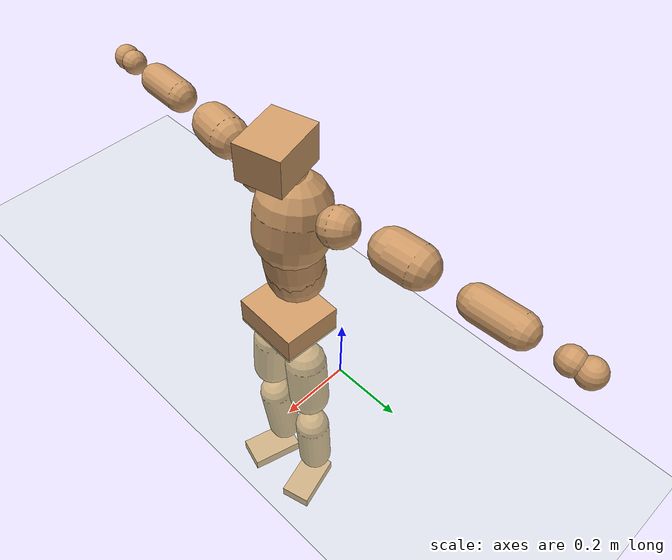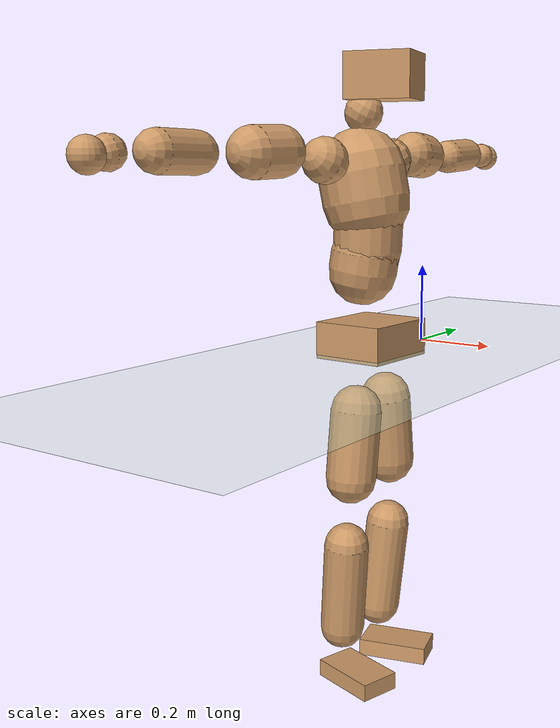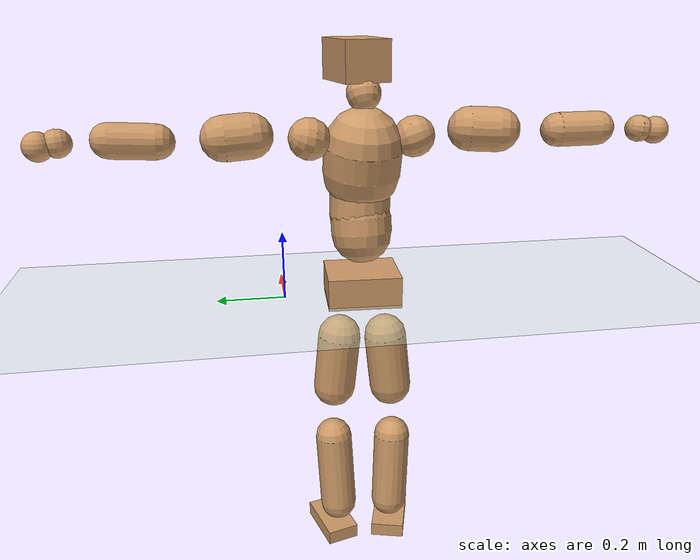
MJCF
<mujoco model="humanoid">
  <compiler coordinate="local" angle="radian"/>
  <default>
    <joint damping="0.0" armature="0.01" stiffness="0.0" limited="true"/>
    <geom conaffinity="1" condim="3" contype="7" margin="0.001" rgba="0.8 0.6 .4 1"/>
  </default>
  <asset>
    <texture type="skybox" builtin="gradient" rgb1=".4 .5 .6" rgb2="0 0 0" width="100" height="100"/>
    <texture builtin="flat" height="1278" mark="cross" markrgb="1 1 1" name="texgeom" random="0.01" rgb1="0.8 0.6 0.4" rgb2="0.8 0.6 0.4" type="cube" width="127"/>
    <texture builtin="checker" height="100" name="texplane" rgb1="0 0 0" rgb2="0.8 0.8 0.8" type="2d" width="100"/>
    <material name="MatPlane" reflectance="0.5" shininess="1" specular="1" texrepeat="60 60" texture="texplane"/>
    <material name="geom" texture="texgeom" texuniform="true"/>
  </asset>
  <worldbody>
    <light cutoff="100" diffuse="1 1 1" dir="-0 0 -1.3" directional="true" exponent="1" pos="0 0 1.3" specular=".1 .1 .1"/>
    <geom conaffinity="1" condim="3" name="floor" pos="0 0 0" rgba="0.8 0.9 0.8 1" size="100 100 .2" type="plane" material="MatPlane"/>
    <body name="Pelvis" pos="-0.0036 -0.2286 0.0427">
      <freejoint name="Pelvis"/>
      <geom type="box" contype="1" conaffinity="1" density="5359.374392" pos="-0.0109 0.0004 -0.0076" size="0.0925 0.1064 0.046" quat="0.9998 0.0000 0.0000 -0.0190" name="Pelvis"/>
      <body name="L_Hip" pos="-0.0118 0.0605 -0.0788">
        <joint name="L_Hip_x" type="hinge" pos="0 0 0" axis="1 0 0" stiffness="1600" damping="160" armature="0.02" range="-180.0000 180.0000"/>
        <joint name="L_Hip_y" type="hinge" pos="0 0 0" axis="0 1 0" stiffness="1600" damping="160" armature="0.02" range="-180.0000 180.0000"/>
        <joint name="L_Hip_z" type="hinge" pos="0 0 0" axis="0 0 1" stiffness="1600" damping="160" armature="0.02" range="-180.0000 180.0000"/>
        <geom type="capsule" contype="1" conaffinity="1" density="2040.816327" size="0.0643" fromto="0.0014 0.0097 -0.0938 0.0041 0.0275 -0.2657" name="L_Hip"/>
        <body name="L_Knee" pos="0.0055 0.0372 -0.3595">
          <joint name="L_Knee_x" type="hinge" pos="0 0 0" axis="1 0 0" stiffness="1600" damping="160" armature="0.02" range="-180.0000 180.0000"/>
          <joint name="L_Knee_y" type="hinge" pos="0 0 0" axis="0 1 0" stiffness="1600" damping="160" armature="0.02" range="-180.0000 180.0000"/>
          <joint name="L_Knee_z" type="hinge" pos="0 0 0" axis="0 0 1" stiffness="1600" damping="160" armature="0.02" range="-180.0000 180.0000"/>
          <geom type="capsule" contype="1" conaffinity="1" density="1234.567901" size="0.0568" fromto="-0.0080 -0.0034 -0.0863 -0.0304 -0.0129 -0.3264" name="L_Knee"/>
          <body name="L_Ankle" pos="-0.0384 -0.0164 -0.4127">
            <joint name="L_Ankle_x" type="hinge" pos="0 0 0" axis="1 0 0" stiffness="1600" damping="160" armature="0.02" range="-180.0000 180.0000"/>
            <joint name="L_Ankle_y" type="hinge" pos="0 0 0" axis="0 1 0" stiffness="1600" damping="160" armature="0.02" range="-180.0000 180.0000"/>
            <joint name="L_Ankle_z" type="hinge" pos="0 0 0" axis="0 0 1" stiffness="1600" damping="160" armature="0.02" range="-180.0000 180.0000"/>
            <geom type="box" contype="1" conaffinity="1" density="999.999995" pos="0.0608 0.0169 -0.0288" size="0.091 0.0505 0.0222" quat="0.9909 0.0000 0.0000 0.1348" name="L_Ankle"/>
            <body name="L_Toe" pos="0.1216 0.0337 -0.0577">
              <joint name="L_Toe_x" type="hinge" pos="0 0 0" axis="1 0 0" stiffness="1000" damping="100" armature="0.02" range="-180.0000 180.0000"/>
              <joint name="L_Toe_y" type="hinge" pos="0 0 0" axis="0 1 0" stiffness="1000" damping="100" armature="0.02" range="-180.0000 180.0000"/>
              <joint name="L_Toe_z" type="hinge" pos="0 0 0" axis="0 0 1" stiffness="1000" damping="100" armature="0.02" range="-180.0000 180.0000"/>
              <geom type="box" contype="1" conaffinity="1" density="8695655.208086" pos="0.0000 0.0000 0.0272" size="0.0011 0.0025 0.001" quat="0.9901 0.0000 0.0000 0.1402" name="L_Toe"/>
            </body>
          </body>
        </body>
      </body>
      <body name="R_Hip" pos="-0.0059 -0.0628 -0.0873">
        <joint name="R_Hip_x" type="hinge" pos="0 0 0" axis="1 0 0" stiffness="1600" damping="160" armature="0.02" range="-180.0000 180.0000"/>
        <joint name="R_Hip_y" type="hinge" pos="0 0 0" axis="0 1 0" stiffness="1600" damping="160" armature="0.02" range="-180.0000 180.0000"/>
        <joint name="R_Hip_z" type="hinge" pos="0 0 0" axis="0 0 1" stiffness="1600" damping="160" armature="0.02" range="-180.0000 180.0000"/>
        <geom type="capsule" contype="1" conaffinity="1" density="2040.816327" size="0.0638" fromto="-0.0019 -0.0094 -0.0933 -0.0055 -0.0268 -0.2669" name="R_Hip"/>
        <body name="R_Knee" pos="-0.0074 -0.0362 -0.3603">
          <joint name="R_Knee_x" type="hinge" pos="0 0 0" axis="1 0 0" stiffness="1600" damping="160" armature="0.02" range="-180.0000 180.0000"/>
          <joint name="R_Knee_y" type="hinge" pos="0 0 0" axis="0 1 0" stiffness="1600" damping="160" armature="0.02" range="-180.0000 180.0000"/>
          <joint name="R_Knee_z" type="hinge" pos="0 0 0" axis="0 0 1" stiffness="1600" damping="160" armature="0.02" range="-180.0000 180.0000"/>
          <geom type="capsule" contype="1" conaffinity="1" density="1234.567901" size="0.0568" fromto="-0.0075 0.0040 -0.0864 -0.0277 0.0149 -0.3191" name="R_Knee"/>
          <body name="R_Ankle" pos="-0.0352 0.0189 -0.4054">
            <joint name="R_Ankle_x" type="hinge" pos="0 0 0" axis="1 0 0" stiffness="1600" damping="160" armature="0.02" range="-180.0000 180.0000"/>
            <joint name="R_Ankle_y" type="hinge" pos="0 0 0" axis="0 1 0" stiffness="1600" damping="160" armature="0.02" range="-180.0000 180.0000"/>
            <joint name="R_Ankle_z" type="hinge" pos="0 0 0" axis="0 0 1" stiffness="1600" damping="160" armature="0.02" range="-180.0000 180.0000"/>
            <geom type="box" contype="1" conaffinity="1" density="999.999982" pos="0.0641 -0.0180 -0.0297" size="0.0896 0.0526 0.022" quat="0.9906 0.0000 0.0000 -0.1365" name="R_Ankle"/>
            <body name="R_Toe" pos="0.1283 -0.036 -0.0594">
              <joint name="R_Toe_x" type="hinge" pos="0 0 0" axis="1 0 0" stiffness="1000" damping="100" armature="0.02" range="-180.0000 180.0000"/>
              <joint name="R_Toe_y" type="hinge" pos="0 0 0" axis="0 1 0" stiffness="1000" damping="100" armature="0.02" range="-180.0000 180.0000"/>
              <joint name="R_Toe_z" type="hinge" pos="0 0 0" axis="0 0 1" stiffness="1000" damping="100" armature="0.02" range="-180.0000 180.0000"/>
              <geom type="box" contype="1" conaffinity="1" density="8256072.211598" pos="0.0000 0.0000 0.0291" size="0.0012 0.0026 0.0011" quat="0.9919 0.0000 0.0000 -0.1274" name="R_Toe"/>
            </body>
          </body>
        </body>
      </body>
      <body name="Torso" pos="-0.0477 0.0047 0.1203">
        <joint name="Torso_x" type="hinge" pos="0 0 0" axis="1 0 0" stiffness="2000" damping="200" armature="0.02" range="-180.0000 180.0000"/>
        <joint name="Torso_y" type="hinge" pos="0 0 0" axis="0 1 0" stiffness="2000" damping="200" armature="0.02" range="-180.0000 180.0000"/>
        <joint name="Torso_z" type="hinge" pos="0 0 0" axis="0 0 1" stiffness="2000" damping="200" armature="0.02" range="-180.0000 180.0000"/>
        <geom type="capsule" contype="1" conaffinity="1" density="2040.816327" size="0.0863" fromto="0.0132 0.0027 0.0853 0.0062 0.0013 0.0398" name="Torso"/>
        <body name="Spine" pos="0.0194 0.004 0.125">
          <joint name="Spine_x" type="hinge" pos="0 0 0" axis="1 0 0" stiffness="2000" damping="200" armature="0.02" range="-180.0000 180.0000"/>
          <joint name="Spine_y" type="hinge" pos="0 0 0" axis="0 1 0" stiffness="2000" damping="200" armature="0.02" range="-180.0000 180.0000"/>
          <joint name="Spine_z" type="hinge" pos="0 0 0" axis="0 0 1" stiffness="2000" damping="200" armature="0.02" range="-180.0000 180.0000"/>
          <geom type="capsule" contype="1" conaffinity="1" density="2040.816327" size="0.0859" fromto="0.0064 -0.0032 0.0856 -0.0026 0.0013 -0.0346" name="Spine"/>
          <body name="Chest" pos="0.0038 -0.0019 0.0509">
            <joint name="Chest_x" type="hinge" pos="0 0 0" axis="1 0 0" stiffness="2000" damping="200" armature="0.02" range="-180.0000 180.0000"/>
            <joint name="Chest_y" type="hinge" pos="0 0 0" axis="0 1 0" stiffness="2000" damping="200" armature="0.02" range="-180.0000 180.0000"/>
            <joint name="Chest_z" type="hinge" pos="0 0 0" axis="0 0 1" stiffness="2000" damping="200" armature="0.02" range="-180.0000 180.0000"/>
            <geom type="capsule" contype="1" conaffinity="1" density="2040.816327" size="0.1086" fromto="-0.0192 -0.0060 0.1067 -0.0066 -0.0021 0.0367" name="Chest"/>
            <body name="Neck" pos="-0.0356 -0.0141 0.2065">
              <joint name="Neck_x" type="hinge" pos="0 0 0" axis="1 0 0" stiffness="1000" damping="100" armature="0.02" range="-180.0000 180.0000"/>
              <joint name="Neck_y" type="hinge" pos="0 0 0" axis="0 1 0" stiffness="1000" damping="100" armature="0.02" range="-180.0000 180.0000"/>
              <joint name="Neck_z" type="hinge" pos="0 0 0" axis="0 0 1" stiffness="1000" damping="100" armature="0.02" range="-180.0000 180.0000"/>
              <geom type="capsule" contype="1" conaffinity="1" density="1000" size="0.0472" fromto="0.0238 0.0054 0.0398 0.0248 0.0056 0.0416" name="Neck"/>
              <body name="Head" pos="0.0486 0.011 0.0814">
                <joint name="Head_x" type="hinge" pos="0 0 0" axis="1 0 0" stiffness="1000" damping="100" armature="0.02" range="-180.0000 180.0000"/>
                <joint name="Head_y" type="hinge" pos="0 0 0" axis="0 1 0" stiffness="1000" damping="100" armature="0.02" range="-180.0000 180.0000"/>
                <joint name="Head_z" type="hinge" pos="0 0 0" axis="0 0 1" stiffness="1000" damping="100" armature="0.02" range="-180.0000 180.0000"/>
                <geom type="box" contype="1" conaffinity="1" density="2250.000051" pos="0.0253 0.0065 0.0417" size="0.0825 0.0655 0.0546" quat="0.9921 0.0000 0.0000 0.1253" name="Head"/>
              </body>
            </body>
            <body name="L_Thorax" pos="-0.018 0.0754 0.1127">
              <joint name="L_Thorax_x" type="hinge" pos="0 0 0" axis="1 0 0" stiffness="1000" damping="100" armature="0.02" range="-180.0000 180.0000"/>
              <joint name="L_Thorax_y" type="hinge" pos="0 0 0" axis="0 1 0" stiffness="1000" damping="100" armature="0.02" range="-180.0000 180.0000"/>
              <joint name="L_Thorax_z" type="hinge" pos="0 0 0" axis="0 0 1" stiffness="1000" damping="100" armature="0.02" range="-180.0000 180.0000"/>
              <geom type="capsule" contype="1" conaffinity="1" density="1000" size="0.0565" fromto="-0.0122 0.0652 0.0213 -0.0126 0.0671 0.0219" name="L_Thorax"/>
              <body name="L_Shoulder" pos="-0.0248 0.1323 0.0432">
                <joint name="L_Shoulder_x" type="hinge" pos="0 0 0" axis="1 0 0" stiffness="1000" damping="100" armature="0.02" range="-720.0000 720.0000"/>
                <joint name="L_Shoulder_y" type="hinge" pos="0 0 0" axis="0 1 0" stiffness="1000" damping="100" armature="0.02" range="-720.0000 720.0000"/>
                <joint name="L_Shoulder_z" type="hinge" pos="0 0 0" axis="0 0 1" stiffness="1000" damping="100" armature="0.02" range="-720.0000 720.0000"/>
                <geom type="capsule" contype="1" conaffinity="1" density="1000" size="0.0598" fromto="-0.0103 0.0891 -0.0051 -0.0185 0.1596 -0.0091" name="L_Shoulder"/>
                <body name="L_Elbow" pos="-0.0288 0.2487 -0.0141">
                  <joint name="L_Elbow_x" type="hinge" pos="0 0 0" axis="1 0 0" stiffness="1000" damping="100" armature="0.02" range="-720.0000 720.0000"/>
                  <joint name="L_Elbow_y" type="hinge" pos="0 0 0" axis="0 1 0" stiffness="1000" damping="100" armature="0.02" range="-720.0000 720.0000"/>
                  <joint name="L_Elbow_z" type="hinge" pos="0 0 0" axis="0 0 1" stiffness="1000" damping="100" armature="0.02" range="-720.0000 720.0000"/>
                  <geom type="capsule" contype="1" conaffinity="1" density="1000" size="0.046" fromto="-0.0013 0.0759 0.0041 -0.0033 0.1925 0.0104" name="L_Elbow"/>
                  <body name="L_Wrist" pos="-0.0046 0.2685 0.0145">
                    <joint name="L_Wrist_x" type="hinge" pos="0 0 0" axis="1 0 0" stiffness="600" damping="60" armature="0.02" range="-180.0000 180.0000"/>
                    <joint name="L_Wrist_y" type="hinge" pos="0 0 0" axis="0 1 0" stiffness="600" damping="60" armature="0.02" range="-180.0000 180.0000"/>
                    <joint name="L_Wrist_z" type="hinge" pos="0 0 0" axis="0 0 1" stiffness="600" damping="60" armature="0.02" range="-180.0000 180.0000"/>
                    <geom type="capsule" contype="1" conaffinity="1" density="1000" size="0.0357" fromto="-0.0079 0.0442 -0.0055 -0.0082 0.0461 -0.0057" name="L_Wrist"/>
                    <body name="L_Hand" pos="-0.0161 0.0903 -0.0112">
                      <joint name="L_Hand_x" type="hinge" pos="0 0 0" axis="1 0 0" stiffness="600" damping="60" armature="0.02" range="-180.0000 180.0000"/>
                      <joint name="L_Hand_y" type="hinge" pos="0 0 0" axis="0 1 0" stiffness="600" damping="60" armature="0.02" range="-180.0000 180.0000"/>
                      <joint name="L_Hand_z" type="hinge" pos="0 0 0" axis="0 0 1" stiffness="600" damping="60" armature="0.02" range="-180.0000 180.0000"/>
                      <geom type="sphere" contype="1" conaffinity="1" density="1000" size="0.0371" pos="0.0000 0.0000 0.0000" name="L_Hand"/>
                    </body>
                  </body>
                </body>
              </body>
            </body>
            <body name="R_Thorax" pos="-0.0237 -0.0856 0.111">
              <joint name="R_Thorax_x" type="hinge" pos="0 0 0" axis="1 0 0" stiffness="1000" damping="100" armature="0.02" range="-180.0000 180.0000"/>
              <joint name="R_Thorax_y" type="hinge" pos="0 0 0" axis="0 1 0" stiffness="1000" damping="100" armature="0.02" range="-180.0000 180.0000"/>
              <joint name="R_Thorax_z" type="hinge" pos="0 0 0" axis="0 0 1" stiffness="1000" damping="100" armature="0.02" range="-180.0000 180.0000"/>
              <geom type="capsule" contype="1" conaffinity="1" density="1000" size="0.0559" fromto="-0.0064 -0.0586 0.0222 -0.0066 -0.0605 0.0229" name="R_Thorax"/>
              <body name="R_Shoulder" pos="-0.0129 -0.1191 0.0452">
                <joint name="R_Shoulder_x" type="hinge" pos="0 0 0" axis="1 0 0" stiffness="1000" damping="100" armature="0.02" range="-720.0000 720.0000"/>
                <joint name="R_Shoulder_y" type="hinge" pos="0 0 0" axis="0 1 0" stiffness="1000" damping="100" armature="0.02" range="-720.0000 720.0000"/>
                <joint name="R_Shoulder_z" type="hinge" pos="0 0 0" axis="0 0 1" stiffness="1000" damping="100" armature="0.02" range="-720.0000 720.0000"/>
                <geom type="capsule" contype="1" conaffinity="1" density="1000" size="0.0598" fromto="-0.0133 -0.0888 -0.0031 -0.0251 -0.1669 -0.0059" name="R_Shoulder"/>
                <body name="R_Elbow" pos="-0.0384 -0.2557 -0.009">
                  <joint name="R_Elbow_x" type="hinge" pos="0 0 0" axis="1 0 0" stiffness="1000" damping="100" armature="0.02" range="-720.0000 720.0000"/>
                  <joint name="R_Elbow_y" type="hinge" pos="0 0 0" axis="0 1 0" stiffness="1000" damping="100" armature="0.02" range="-720.0000 720.0000"/>
                  <joint name="R_Elbow_z" type="hinge" pos="0 0 0" axis="0 0 1" stiffness="1000" damping="100" armature="0.02" range="-720.0000 720.0000"/>
                  <geom type="capsule" contype="1" conaffinity="1" density="1000" size="0.0463" fromto="-0.0012 -0.0763 0.0012 -0.0030 -0.1896 0.0029" name="R_Elbow"/>
                  <body name="R_Wrist" pos="-0.0042 -0.2659 0.0041">
                    <joint name="R_Wrist_x" type="hinge" pos="0 0 0" axis="1 0 0" stiffness="600" damping="60" armature="0.02" range="-180.0000 180.0000"/>
                    <joint name="R_Wrist_y" type="hinge" pos="0 0 0" axis="0 1 0" stiffness="600" damping="60" armature="0.02" range="-180.0000 180.0000"/>
                    <joint name="R_Wrist_z" type="hinge" pos="0 0 0" axis="0 0 1" stiffness="600" damping="60" armature="0.02" range="-180.0000 180.0000"/>
                    <geom type="capsule" contype="1" conaffinity="1" density="1000" size="0.0362" fromto="-0.0051 -0.0446 -0.0045 -0.0053 -0.0466 -0.0048" name="R_Wrist"/>
                    <body name="R_Hand" pos="-0.0104 -0.0912 -0.0093">
                      <joint name="R_Hand_x" type="hinge" pos="0 0 0" axis="1 0 0" stiffness="600" damping="60" armature="0.02" range="-180.0000 180.0000"/>
                      <joint name="R_Hand_y" type="hinge" pos="0 0 0" axis="0 1 0" stiffness="600" damping="60" armature="0.02" range="-180.0000 180.0000"/>
                      <joint name="R_Hand_z" type="hinge" pos="0 0 0" axis="0 0 1" stiffness="600" damping="60" armature="0.02" range="-180.0000 180.0000"/>
                      <geom type="sphere" contype="1" conaffinity="1" density="1000" size="0.0372" pos="0.0000 0.0000 0.0000" name="R_Hand"/>
                    </body>
                  </body>
                </body>
              </body>
            </body>
          </body>
        </body>
      </body>
    </body>
  </worldbody>
  <actuator>
    <motor name="L_Hip_x" joint="L_Hip_x" gear="500"/>
    <motor name="L_Hip_y" joint="L_Hip_y" gear="500"/>
    <motor name="L_Hip_z" joint="L_Hip_z" gear="500"/>
    <motor name="L_Knee_x" joint="L_Knee_x" gear="500"/>
    <motor name="L_Knee_y" joint="L_Knee_y" gear="500"/>
    <motor name="L_Knee_z" joint="L_Knee_z" gear="500"/>
    <motor name="L_Ankle_x" joint="L_Ankle_x" gear="500"/>
    <motor name="L_Ankle_y" joint="L_Ankle_y" gear="500"/>
    <motor name="L_Ankle_z" joint="L_Ankle_z" gear="500"/>
    <motor name="L_Toe_x" joint="L_Toe_x" gear="500"/>
    <motor name="L_Toe_y" joint="L_Toe_y" gear="500"/>
    <motor name="L_Toe_z" joint="L_Toe_z" gear="500"/>
    <motor name="R_Hip_x" joint="R_Hip_x" gear="500"/>
    <motor name="R_Hip_y" joint="R_Hip_y" gear="500"/>
    <motor name="R_Hip_z" joint="R_Hip_z" gear="500"/>
    <motor name="R_Knee_x" joint="R_Knee_x" gear="500"/>
    <motor name="R_Knee_y" joint="R_Knee_y" gear="500"/>
    <motor name="R_Knee_z" joint="R_Knee_z" gear="500"/>
    <motor name="R_Ankle_x" joint="R_Ankle_x" gear="500"/>
    <motor name="R_Ankle_y" joint="R_Ankle_y" gear="500"/>
    <motor name="R_Ankle_z" joint="R_Ankle_z" gear="500"/>
    <motor name="R_Toe_x" joint="R_Toe_x" gear="500"/>
    <motor name="R_Toe_y" joint="R_Toe_y" gear="500"/>
    <motor name="R_Toe_z" joint="R_Toe_z" gear="500"/>
    <motor name="Torso_x" joint="Torso_x" gear="500"/>
    <motor name="Torso_y" joint="Torso_y" gear="500"/>
    <motor name="Torso_z" joint="Torso_z" gear="500"/>
    <motor name="Spine_x" joint="Spine_x" gear="500"/>
    <motor name="Spine_y" joint="Spine_y" gear="500"/>
    <motor name="Spine_z" joint="Spine_z" gear="500"/>
    <motor name="Chest_x" joint="Chest_x" gear="500"/>
    <motor name="Chest_y" joint="Chest_y" gear="500"/>
    <motor name="Chest_z" joint="Chest_z" gear="500"/>
    <motor name="Neck_x" joint="Neck_x" gear="500"/>
    <motor name="Neck_y" joint="Neck_y" gear="500"/>
    <motor name="Neck_z" joint="Neck_z" gear="500"/>
    <motor name="Head_x" joint="Head_x" gear="500"/>
    <motor name="Head_y" joint="Head_y" gear="500"/>
    <motor name="Head_z" joint="Head_z" gear="500"/>
    <motor name="L_Thorax_x" joint="L_Thorax_x" gear="500"/>
    <motor name="L_Thorax_y" joint="L_Thorax_y" gear="500"/>
    <motor name="L_Thorax_z" joint="L_Thorax_z" gear="500"/>
    <motor name="L_Shoulder_x" joint="L_Shoulder_x" gear="500"/>
    <motor name="L_Shoulder_y" joint="L_Shoulder_y" gear="500"/>
    <motor name="L_Shoulder_z" joint="L_Shoulder_z" gear="500"/>
    <motor name="L_Elbow_x" joint="L_Elbow_x" gear="500"/>
    <motor name="L_Elbow_y" joint="L_Elbow_y" gear="500"/>
    <motor name="L_Elbow_z" joint="L_Elbow_z" gear="500"/>
    <motor name="L_Wrist_x" joint="L_Wrist_x" gear="500"/>
    <motor name="L_Wrist_y" joint="L_Wrist_y" gear="500"/>
    <motor name="L_Wrist_z" joint="L_Wrist_z" gear="500"/>
    <motor name="L_Hand_x" joint="L_Hand_x" gear="500"/>
    <motor name="L_Hand_y" joint="L_Hand_y" gear="500"/>
    <motor name="L_Hand_z" joint="L_Hand_z" gear="500"/>
    <motor name="R_Thorax_x" joint="R_Thorax_x" gear="500"/>
    <motor name="R_Thorax_y" joint="R_Thorax_y" gear="500"/>
    <motor name="R_Thorax_z" joint="R_Thorax_z" gear="500"/>
    <motor name="R_Shoulder_x" joint="R_Shoulder_x" gear="500"/>
    <motor name="R_Shoulder_y" joint="R_Shoulder_y" gear="500"/>
    <motor name="R_Shoulder_z" joint="R_Shoulder_z" gear="500"/>
    <motor name="R_Elbow_x" joint="R_Elbow_x" gear="500"/>
    <motor name="R_Elbow_y" joint="R_Elbow_y" gear="500"/>
    <motor name="R_Elbow_z" joint="R_Elbow_z" gear="500"/>
    <motor name="R_Wrist_x" joint="R_Wrist_x" gear="500"/>
    <motor name="R_Wrist_y" joint="R_Wrist_y" gear="500"/>
    <motor name="R_Wrist_z" joint="R_Wrist_z" gear="500"/>
    <motor name="R_Hand_x" joint="R_Hand_x" gear="500"/>
    <motor name="R_Hand_y" joint="R_Hand_y" gear="500"/>
    <motor name="R_Hand_z" joint="R_Hand_z" gear="500"/>
  </actuator>
  <contact>
    <exclude body1="Torso" body2="Chest"/>
    <exclude body1="Head" body2="Chest"/>
    <exclude body1="R_Knee" body2="R_Toe"/>
    <exclude body1="R_Knee" body2="L_Ankle"/>
    <exclude body1="R_Knee" body2="L_Toe"/>
    <exclude body1="L_Knee" body2="L_Toe"/>
    <exclude body1="L_Knee" body2="R_Ankle"/>
    <exclude body1="L_Knee" body2="R_Toe"/>
    <exclude body1="L_Shoulder" body2="Chest"/>
    <exclude body1="R_Shoulder" body2="Chest"/>
  </contact>
  <sensor/>
  <size njmax="700" nconmax="700"/>
</mujoco>
